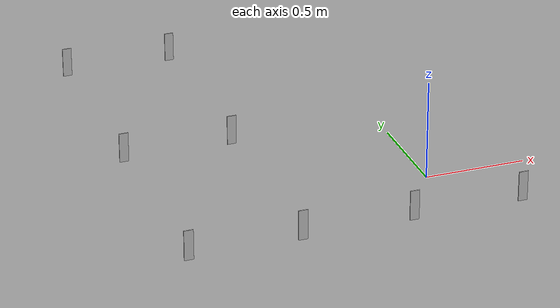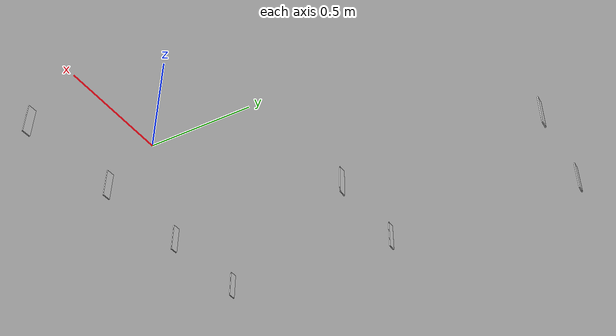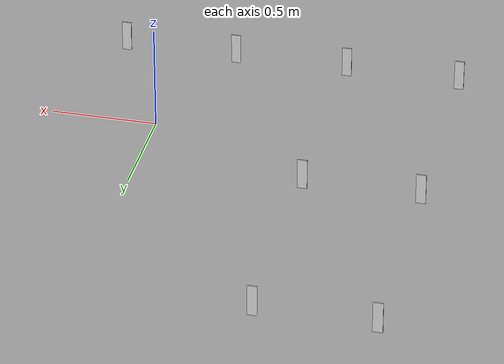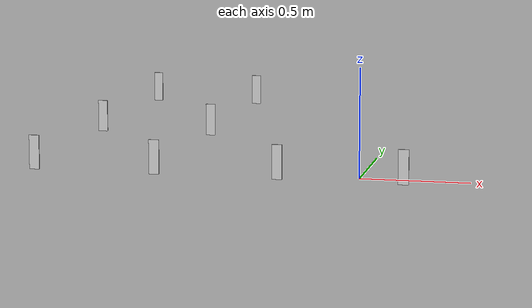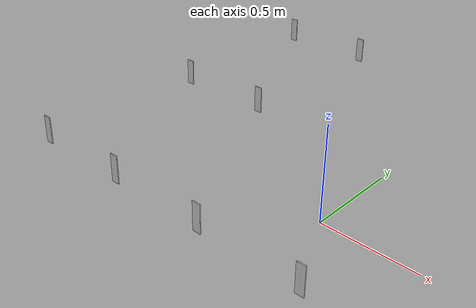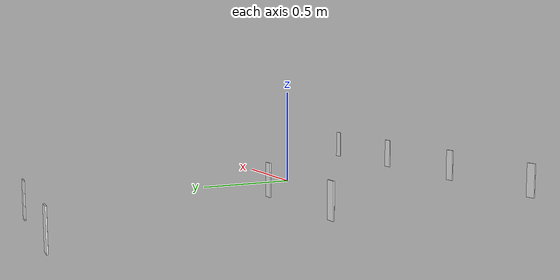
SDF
<?xml version='1.0'?>
<sdf version='1.6'>
  <!-- Reserved standees removed from competition_classic.world. -->
  <model name='person_standee_01'><static>1</static><pose>-1.35 1.50 0.083333333 0 0 0</pose><link name='standee'><visual name='standee_board'><pose>0 0 0.075 0 0 0</pose><geometry><box><size>0.045 0.005 0.15</size></box></geometry><material><ambient>0.82 0.82 0.82 1</ambient><diffuse>0.92 0.92 0.92 1</diffuse></material></visual><visual name='person_image_front'><pose>0 -0.00255 0.075 0 0 0</pose><geometry><box><size>0.045 0.0001 0.15</size></box></geometry><material><script><uri>file:///root/person_standees/materials/scripts</uri><uri>file:///root/person_standees/materials/textures</uri><name>PersonStandee/Person01</name></script></material></visual><collision name='collision'><pose>0 0 0.075 0 0 0</pose><geometry><box><size>0.045 0.005 0.15</size></box></geometry></collision></link></model>
  <model name='person_standee_02'><static>1</static><pose>-0.81 1.50 0.083333333 0 0 0</pose><link name='standee'><visual name='standee_board'><pose>0 0 0.075 0 0 0</pose><geometry><box><size>0.045 0.005 0.15</size></box></geometry><material><ambient>0.82 0.82 0.82 1</ambient><diffuse>0.92 0.92 0.92 1</diffuse></material></visual><visual name='person_image_front'><pose>0 -0.00255 0.075 0 0 0</pose><geometry><box><size>0.045 0.0001 0.15</size></box></geometry><material><script><uri>file:///root/person_standees/materials/scripts</uri><uri>file:///root/person_standees/materials/textures</uri><name>PersonStandee/Person02</name></script></material></visual><collision name='collision'><pose>0 0 0.075 0 0 0</pose><geometry><box><size>0.045 0.005 0.15</size></box></geometry></collision></link></model>
  <model name='person_standee_07'><static>1</static><pose>-1.35 0.50 0.083333333 0 0 0</pose><link name='standee'><visual name='standee_board'><pose>0 0 0.075 0 0 0</pose><geometry><box><size>0.045 0.005 0.15</size></box></geometry><material><ambient>0.82 0.82 0.82 1</ambient><diffuse>0.92 0.92 0.92 1</diffuse></material></visual><visual name='person_image_front'><pose>0 -0.00255 0.075 0 0 0</pose><geometry><box><size>0.045 0.0001 0.15</size></box></geometry><material><script><uri>file:///root/person_standees/materials/scripts</uri><uri>file:///root/person_standees/materials/textures</uri><name>PersonStandee/Person07</name></script></material></visual><collision name='collision'><pose>0 0 0.075 0 0 0</pose><geometry><box><size>0.045 0.005 0.15</size></box></geometry></collision></link></model>
  <model name='person_standee_08'><static>1</static><pose>-0.81 0.50 0.083333333 0 0 0</pose><link name='standee'><visual name='standee_board'><pose>0 0 0.075 0 0 0</pose><geometry><box><size>0.045 0.005 0.15</size></box></geometry><material><ambient>0.82 0.82 0.82 1</ambient><diffuse>0.92 0.92 0.92 1</diffuse></material></visual><visual name='person_image_front'><pose>0 -0.00255 0.075 0 0 0</pose><geometry><box><size>0.045 0.0001 0.15</size></box></geometry><material><script><uri>file:///root/person_standees/materials/scripts</uri><uri>file:///root/person_standees/materials/textures</uri><name>PersonStandee/Person08</name></script></material></visual><collision name='collision'><pose>0 0 0.075 0 0 0</pose><geometry><box><size>0.045 0.005 0.15</size></box></geometry></collision></link></model>
  <model name='person_standee_13'><static>1</static><pose>-1.35 -0.50 0.083333333 0 0 0</pose><link name='standee'><visual name='standee_board'><pose>0 0 0.075 0 0 0</pose><geometry><box><size>0.045 0.005 0.15</size></box></geometry><material><ambient>0.82 0.82 0.82 1</ambient><diffuse>0.92 0.92 0.92 1</diffuse></material></visual><visual name='person_image_front'><pose>0 -0.00255 0.075 0 0 0</pose><geometry><box><size>0.045 0.0001 0.15</size></box></geometry><material><script><uri>file:///root/person_standees/materials/scripts</uri><uri>file:///root/person_standees/materials/textures</uri><name>PersonStandee/Person13</name></script></material></visual><collision name='collision'><pose>0 0 0.075 0 0 0</pose><geometry><box><size>0.045 0.005 0.15</size></box></geometry></collision></link></model>
  <model name='person_standee_14'><static>1</static><pose>-0.81 -0.50 0.083333333 0 0 0</pose><link name='standee'><visual name='standee_board'><pose>0 0 0.075 0 0 0</pose><geometry><box><size>0.045 0.005 0.15</size></box></geometry><material><ambient>0.82 0.82 0.82 1</ambient><diffuse>0.92 0.92 0.92 1</diffuse></material></visual><visual name='person_image_front'><pose>0 -0.00255 0.075 0 0 0</pose><geometry><box><size>0.045 0.0001 0.15</size></box></geometry><material><script><uri>file:///root/person_standees/materials/scripts</uri><uri>file:///root/person_standees/materials/textures</uri><name>PersonStandee/Person14</name></script></material></visual><collision name='collision'><pose>0 0 0.075 0 0 0</pose><geometry><box><size>0.045 0.005 0.15</size></box></geometry></collision></link></model>
  <model name='person_standee_15'><static>1</static><pose>-0.27 -0.50 0.083333333 0 0 0</pose><link name='standee'><visual name='standee_board'><pose>0 0 0.075 0 0 0</pose><geometry><box><size>0.045 0.005 0.15</size></box></geometry><material><ambient>0.82 0.82 0.82 1</ambient><diffuse>0.92 0.92 0.92 1</diffuse></material></visual><visual name='person_image_front'><pose>0 -0.00255 0.075 0 0 0</pose><geometry><box><size>0.045 0.0001 0.15</size></box></geometry><material><script><uri>file:///root/person_standees/materials/scripts</uri><uri>file:///root/person_standees/materials/textures</uri><name>PersonStandee/Person15</name></script></material></visual><collision name='collision'><pose>0 0 0.075 0 0 0</pose><geometry><box><size>0.045 0.005 0.15</size></box></geometry></collision></link></model>
  <model name='person_standee_16'><static>1</static><pose>0.27 -0.50 0.083333333 0 0 0</pose><link name='standee'><visual name='standee_board'><pose>0 0 0.075 0 0 0</pose><geometry><box><size>0.045 0.005 0.15</size></box></geometry><material><ambient>0.82 0.82 0.82 1</ambient><diffuse>0.92 0.92 0.92 1</diffuse></material></visual><visual name='person_image_front'><pose>0 -0.00255 0.075 0 0 0</pose><geometry><box><size>0.045 0.0001 0.15</size></box></geometry><material><script><uri>file:///root/person_standees/materials/scripts</uri><uri>file:///root/person_standees/materials/textures</uri><name>PersonStandee/Person16</name></script></material></visual><collision name='collision'><pose>0 0 0.075 0 0 0</pose><geometry><box><size>0.045 0.005 0.15</size></box></geometry></collision></link></model>
</sdf>
